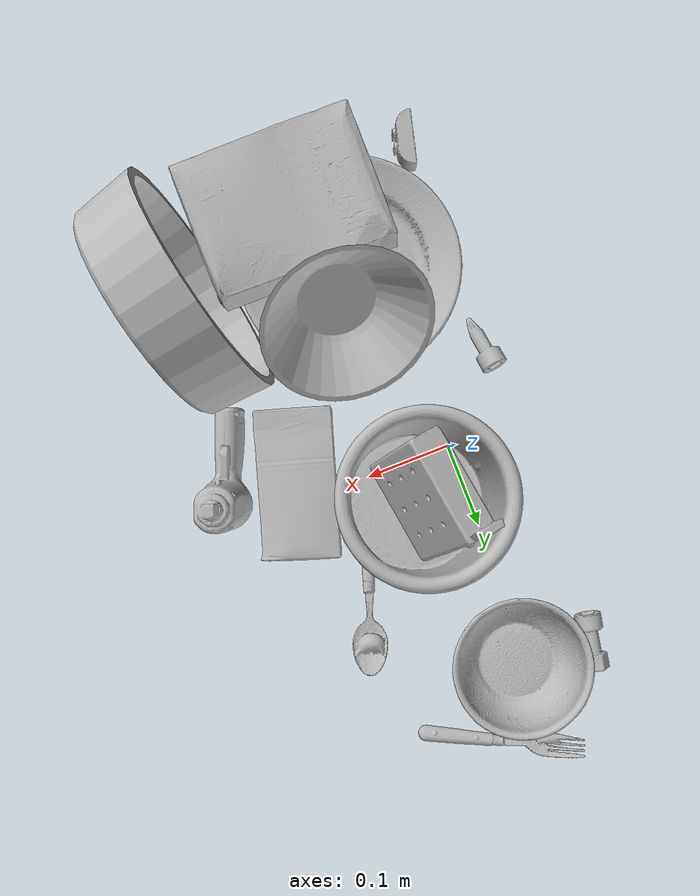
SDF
<sdf version="1.4">
  <world name="default">
    <light name="light1" type="point">
      <pose>0 0 1 0 0 0</pose>
      <diffuse>3 3 3 1</diffuse>
      <specular>3 3 3 1</specular>
    </light>
    <light name="light2" type="point">
      <pose>0 0.5 2 0 0 0</pose>
      <diffuse>1 1 1 1</diffuse>
      <specular>1 1 1 1</specular>
    </light>
    <light name="light3" type="point">
      <pose>0 0.5 2 0 0 0</pose>
      <diffuse>3 3 3 1</diffuse>
      <specular>3 3 3 1</specular>
    </light>
    <scene>
      <ambient>0.7 0.7 0.7</ambient>
    </scene>
    <model name="plate1">
      <link name="link_plate1">
        <collision name="default">
          <geometry>
            <mesh>
              <uri>model://plate/collision_meshes/collision.obj</uri>
              <scale>1.0 1.0 1.0</scale>
            </mesh>
          </geometry>
          <surface>
            <friction>
              <ode>
                <mu>0.5</mu>
                <mu2>0.5</mu2>
              </ode>
            </friction>
          <contact>
        <ode>
            <max_vel>0</max_vel>
            <min_depth>0.0001</min_depth>
            <kp>1e8</kp>
        </ode>
    </contact></surface>
        </collision>
        <visual name="default">
          <geometry>
            <mesh>
              <uri>model://plate/visual_meshes/visual.dae</uri>
              <scale>1.0 1.0 1.0</scale>
            </mesh>
          </geometry>
        </visual>
        <inertial>
          <mass>0.11001742631196976</mass>
          <pose>-0.0006044686888344586 0.000278257648460567 -0.0010561998933553696 0.00221878912528286 -0.0032254756485070152 0.4526088917028743</pose>
          <inertia>
            <ixx>0.00051466376</ixx>
            <iyy>0.0005097412</iyy>
            <izz>0.0010066056</izz>
            <ixy>0</ixy>
            <ixz>0</ixz>
            <iyz>0</iyz>
          </inertia>
        </inertial>
      </link>
      <pose>0.03130577132105827 -0.23690801858901978 0.014688513241708279 0.005058505987809246 -0.012124375989660135 1.295504745749021</pose>
    </model>
    <model name="plate2">
      <link name="link_plate2">
        <collision name="default">
          <geometry>
            <mesh>
              <uri>model://pan_tefal/collision_meshes/collision.obj</uri>
              <scale>1.0 1.0 1.0</scale>
            </mesh>
          </geometry>
          <surface>
            <friction>
              <ode>
                <mu>0.5</mu>
                <mu2>0.5</mu2>
              </ode>
            </friction>
          <contact>
        <ode>
            <max_vel>0</max_vel>
            <min_depth>0.0001</min_depth>
            <kp>1e8</kp>
        </ode>
    </contact></surface>
        </collision>
        <visual name="default">
          <geometry>
            <mesh>
              <uri>model://pan_tefal/visual_meshes/visual.dae</uri>
              <scale>1.0 1.0 1.0</scale>
            </mesh>
          </geometry>
        </visual>
        <inertial>
          <mass>1.457576870918274</mass>
          <pose>-0.00018002426077146083 3.279360316810198e-05 -0.008514936082065105 0.0008190306735146073 -0.00033013365411173643 -0.33185917339097665</pose>
          <inertia>
            <ixx>0.010061583</ixx>
            <iyy>0.01012645</iyy>
            <izz>0.01852144</izz>
            <ixy>0</ixy>
            <ixz>0</ixz>
            <iyz>0</iyz>
          </inertia>
        </inertial>
      </link>
      <pose>0.2211863249540329 -0.25406575202941895 0.1284227818250656 -1.3502767687867459 1.0573364377804813 1.9417198221155187</pose>
    </model>
    <model name="bowl1">
      <link name="link_bowl1">
        <collision name="default">
          <geometry>
            <mesh>
              <uri>model://bowl_a/collision_meshes/collision.obj</uri>
              <scale>1.0 1.0 1.0</scale>
            </mesh>
          </geometry>
          <surface>
            <friction>
              <ode>
                <mu>0.5</mu>
                <mu2>0.5</mu2>
              </ode>
            </friction>
          <contact>
        <ode>
            <max_vel>0</max_vel>
            <min_depth>0.0001</min_depth>
            <kp>1e8</kp>
        </ode>
    </contact></surface>
        </collision>
        <visual name="default">
          <geometry>
            <mesh>
              <uri>model://bowl_a/visual_meshes/visual.dae</uri>
              <scale>1.0 1.0 1.0</scale>
            </mesh>
          </geometry>
        </visual>
        <inertial>
          <mass>0.29746556282043457</mass>
          <pose>0.0002786756958812475 4.7311452362919226e-05 -0.0013765294570475817 -0.0009805438325310402 -0.001093816410149737 -0.19123071729823712</pose>
          <inertia>
            <ixx>0.0008468981</ixx>
            <iyy>0.00085209764</iyy>
            <izz>0.0015062407</izz>
            <ixy>0</ixy>
            <ixz>0</ixz>
            <iyz>0</iyz>
          </inertia>
        </inertial>
      </link>
      <pose>0.06167196109890938 -0.18095166981220245 0.08047521114349365 0.7036663475924306 0.22120396333735728 2.883596918948332</pose>
    </model>
    <model name="bowl2">
      <link name="link_bowl2">
        <collision name="default">
          <geometry>
            <mesh>
              <uri>model://bowl/collision_meshes/collision.obj</uri>
              <scale>1.0 1.0 1.0</scale>
            </mesh>
          </geometry>
          <surface>
            <friction>
              <ode>
                <mu>0.5</mu>
                <mu2>0.5</mu2>
              </ode>
            </friction>
          <contact>
        <ode>
            <max_vel>0</max_vel>
            <min_depth>0.0001</min_depth>
            <kp>1e8</kp>
        </ode>
    </contact></surface>
        </collision>
        <visual name="default">
          <geometry>
            <mesh>
              <uri>model://bowl/visual_meshes/visual.dae</uri>
              <scale>1.0 1.0 1.0</scale>
            </mesh>
          </geometry>
        </visual>
        <inertial>
          <mass>0.12348172068595886</mass>
          <pose>0.0002044529828708619 -0.0010302055161446333 -0.0008042656118050218 -0.01576411854188812 0.014546757923928972 0.7140383762832406</pose>
          <inertia>
            <ixx>0.0002836472</ixx>
            <iyy>0.00027730947</iyy>
            <izz>0.00047719217</izz>
            <ixy>0</ixy>
            <ixz>0</ixz>
            <iyz>0</iyz>
          </inertia>
        </inertial>
      </link>
      <pose>0.01728137768805027 0.2655485272407532 0.027779996395111084 -4.1907438380493467e-08 -4.5340024709005986e-09 1.3240054798107244</pose>
    </model>
    <model name="silverware1">
      <link name="link_silverware1">
        <collision name="default">
          <geometry>
            <mesh>
              <uri>model://spoon/collision_meshes/collision.obj</uri>
              <scale>1.0 1.0 1.0</scale>
            </mesh>
          </geometry>
          <surface>
            <friction>
              <ode>
                <mu>0.5</mu>
                <mu2>0.5</mu2>
              </ode>
            </friction>
          <contact>
        <ode>
            <max_vel>0</max_vel>
            <min_depth>0.0001</min_depth>
            <kp>1e8</kp>
        </ode>
    </contact></surface>
        </collision>
        <visual name="default">
          <geometry>
            <mesh>
              <uri>model://spoon/visual_meshes/visual.dae</uri>
              <scale>1.0 1.0 1.0</scale>
            </mesh>
          </geometry>
        </visual>
        <inertial>
          <mass>0.03284037858247757</mass>
          <pose>-0.005526319611817598 -0.001603417214937508 -0.000727165665011853 0.03521671059584429 -0.039065856285187314 0.0061506144474233635</pose>
          <inertia>
            <ixx>1.8266356e-06</ixx>
            <iyy>0.00012495652</iyy>
            <izz>0.00012585736</izz>
            <ixy>0</ixy>
            <ixz>0</ixz>
            <iyz>0</iyz>
          </inertia>
        </inertial>
      </link>
      <pose>0.14758315682411194 0.12518174946308136 0.009420786052942276 -0.022111557784984737 -0.0032538162321472147 1.2207633241451965</pose>
    </model>
    <model name="box1">
      <link name="link_box1">
        <collision name="default">
          <geometry>
            <mesh>
              <uri>model://cracker_box/collision_meshes/collision.obj</uri>
              <scale>1.0 1.0 1.0</scale>
            </mesh>
          </geometry>
          <surface>
            <friction>
              <ode>
                <mu>0.5</mu>
                <mu2>0.5</mu2>
              </ode>
            </friction>
          <contact>
        <ode>
            <max_vel>0</max_vel>
            <min_depth>0.0001</min_depth>
            <kp>1e8</kp>
        </ode>
    </contact></surface>
        </collision>
        <visual name="default">
          <geometry>
            <mesh>
              <uri>model://cracker_box/visual_meshes/visual.dae</uri>
              <scale>1.0 1.0 1.0</scale>
            </mesh>
          </geometry>
        </visual>
        <inertial>
          <mass>2.434305191040039</mass>
          <pose>0.0009464126778766513 0.0002543424488976598 -0.0017029534792527556 -0.0003162073658586955 -0.011106488669321329 0.0025467952332158075</pose>
          <inertia>
            <ixx>0.0061917845</ixx>
            <iyy>0.010223853</iyy>
            <izz>0.014590379</izz>
            <ixy>0</ixy>
            <ixz>0</ixz>
            <iyz>0</iyz>
          </inertia>
        </inertial>
      </link>
      <pose>0.0768856480717659 -0.3182063698768616 0.0614294670522213 0.012974874027044983 0.0028113687641930646 -0.008681219027060365</pose>
    </model>
    <model name="box2">
      <link name="link_box2">
        <collision name="default">
          <geometry>
            <mesh>
              <uri>model://sugar_box/collision_meshes/collision.obj</uri>
              <scale>1.0 1.0 1.0</scale>
            </mesh>
          </geometry>
          <surface>
            <friction>
              <ode>
                <mu>0.5</mu>
                <mu2>0.5</mu2>
              </ode>
            </friction>
          <contact>
        <ode>
            <max_vel>0</max_vel>
            <min_depth>0.0001</min_depth>
            <kp>1e8</kp>
        </ode>
    </contact></surface>
        </collision>
        <visual name="default">
          <geometry>
            <mesh>
              <uri>model://sugar_box/visual_meshes/visual.dae</uri>
              <scale>1.0 1.0 1.0</scale>
            </mesh>
          </geometry>
        </visual>
        <inertial>
          <mass>0.5700510144233704</mass>
          <pose>0.0010343727190047503 3.849109634757042e-05 -0.00036364805418998003 -0.00040462615490547663 0.0010506634056045778 0.0026153790218534064</pose>
          <inertia>
            <ixx>0.00047496508</ixx>
            <iyy>0.0015351841</iyy>
            <izz>0.0018377992</izz>
            <ixy>0</ixy>
            <ixz>0</ixz>
            <iyz>0</iyz>
          </inertia>
        </inertial>
      </link>
      <pose>0.1803962141275406 -0.023503990843892097 0.022362396121025085 3.141270696771289 -0.02510845674537718 1.269339943279457</pose>
    </model>
    <model name="cup1">
      <link name="link_cup1">
        <collision name="default">
          <geometry>
            <mesh>
              <uri>model://i_cups/collision_meshes/collision.obj</uri>
              <scale>2.0 2.0 2.0</scale>
            </mesh>
          </geometry>
          <surface>
            <friction>
              <ode>
                <mu>0.5</mu>
                <mu2>0.5</mu2>
              </ode>
            </friction>
          <contact>
        <ode>
            <max_vel>0</max_vel>
            <min_depth>0.0001</min_depth>
            <kp>1e8</kp>
        </ode>
    </contact></surface>
        </collision>
        <visual name="default">
          <geometry>
            <mesh>
              <uri>model://i_cups/visual_meshes/visual.dae</uri>
              <scale>2.0 2.0 2.0</scale>
            </mesh>
          </geometry>
        </visual>
        <inertial>
          <mass>0.8749163746833801</mass>
          <pose>0.0002248019736725837 0.0003359491820447147 -0.0017158064292743802 -0.028982988446176382 -0.03987323668700188 -0.3459135059395342</pose>
          <inertia>
            <ixx>0.0048453393</ixx>
            <iyy>0.0048880302</iyy>
            <izz>0.0054154512</izz>
            <ixy>0</ixy>
            <ixz>0</ixz>
            <iyz>0</iyz>
          </inertia>
        </inertial>
      </link>
      <pose>0.05669105425477028 0.04354419931769371 0.08158477395772934 -0.08155724272662827 -0.04495176786150802 1.5670682882601616</pose>
    </model>
    <model name="silverware2">
      <link name="link_silverware2">
        <collision name="default">
          <geometry>
            <mesh>
              <uri>model://fork/collision_meshes/collision.obj</uri>
              <scale>1.0 1.0 1.0</scale>
            </mesh>
          </geometry>
          <surface>
            <friction>
              <ode>
                <mu>0.5</mu>
                <mu2>0.5</mu2>
              </ode>
            </friction>
          <contact>
        <ode>
            <max_vel>0</max_vel>
            <min_depth>0.0001</min_depth>
            <kp>1e8</kp>
        </ode>
    </contact></surface>
        </collision>
        <visual name="default">
          <geometry>
            <mesh>
              <uri>model://fork/visual_meshes/visual.dae</uri>
              <scale>1.0 1.0 1.0</scale>
            </mesh>
          </geometry>
        </visual>
        <inertial>
          <mass>0.021080315113067627</mass>
          <pose>-0.02957003377377987 0.00046588227269239724 0.0003218860656488687 -0.013550583544297463 -0.010977830979267335 0.014453899239778455</pose>
          <inertia>
            <ixx>7.3898417e-07</ixx>
            <iyy>5.503463e-05</iyy>
            <izz>5.5365177e-05</izz>
            <ixy>0</ixy>
            <ixz>0</ixz>
            <iyz>0</iyz>
          </inertia>
        </inertial>
      </link>
      <pose>0.06857114285230637 0.3460865914821625 0.005683861207216978 -0.17512556857664807 0.02591299309717815 2.6599017370013875</pose>
    </model>
    <model name="silverware3">
      <link name="link_silverware3">
        <collision name="default">
          <geometry>
            <mesh>
              <uri>model://knife/collision_meshes/collision.obj</uri>
              <scale>1.0 1.0 1.0</scale>
            </mesh>
          </geometry>
          <surface>
            <friction>
              <ode>
                <mu>0.5</mu>
                <mu2>0.5</mu2>
              </ode>
            </friction>
          <contact>
        <ode>
            <max_vel>0</max_vel>
            <min_depth>0.0001</min_depth>
            <kp>1e8</kp>
        </ode>
    </contact></surface>
        </collision>
        <visual name="default">
          <geometry>
            <mesh>
              <uri>model://knife/visual_meshes/visual.dae</uri>
              <scale>1.0 1.0 1.0</scale>
            </mesh>
          </geometry>
        </visual>
        <inertial>
          <mass>0.03557601198554039</mass>
          <pose>-0.023785259574651718 0.0015275123296305537 5.062016498413868e-05 0.07305791577183936 0.01724842049726123 -0.007409813921982597</pose>
          <inertia>
            <ixx>1.0097915e-06</ixx>
            <iyy>0.00013667726</iyy>
            <izz>0.00013700248</izz>
            <ixy>0</ixy>
            <ixz>0</ixz>
            <iyz>0</iyz>
          </inertia>
        </inertial>
      </link>
      <pose>0.27645593881607056 -0.2792123556137085 0.008136807009577751 -0.2817495992423171 -0.008871627421719881 1.6466180765309246</pose>
    </model>
    <model name="toy1">
      <link name="link_toy1">
        <collision name="default">
          <geometry>
            <mesh>
              <uri>model://b_toy_airplane/collision_meshes/collision.obj</uri>
              <scale>1.0 1.0 1.0</scale>
            </mesh>
          </geometry>
          <surface>
            <friction>
              <ode>
                <mu>0.5</mu>
                <mu2>0.5</mu2>
              </ode>
            </friction>
          <contact>
        <ode>
            <max_vel>0</max_vel>
            <min_depth>0.0001</min_depth>
            <kp>1e8</kp>
        </ode>
    </contact></surface>
        </collision>
        <visual name="default">
          <geometry>
            <mesh>
              <uri>model://b_toy_airplane/visual_meshes/visual.dae</uri>
              <scale>1.0 1.0 1.0</scale>
            </mesh>
          </geometry>
        </visual>
        <inertial>
          <mass>0.2131570726633072</mass>
          <pose>0.005081363953649998 0.00401558680459857 0.00954306498169899 -0.040018114912876775 -0.04022188568687408 -0.5601502887595425</pose>
          <inertia>
            <ixx>0.00039573</ixx>
            <iyy>0.00015817716</iyy>
            <izz>0.00049232744</izz>
            <ixy>0</ixy>
            <ixz>0</ixz>
            <iyz>0</iyz>
          </inertia>
        </inertial>
      </link>
      <pose>0.264402836561203 -0.057824648916721344 0.0422339104115963 0.0403281092892846 -1.490635718485571 -0.3754663594256719</pose>
    </model>
    <model name="toy2">
      <link name="link_toy2">
        <collision name="default">
          <geometry>
            <mesh>
              <uri>model://nine_hole_peg_test/collision_meshes/collision.obj</uri>
              <scale>1.0 1.0 1.0</scale>
            </mesh>
          </geometry>
          <surface>
            <friction>
              <ode>
                <mu>0.5</mu>
                <mu2>0.5</mu2>
              </ode>
            </friction>
          <contact>
        <ode>
            <max_vel>0</max_vel>
            <min_depth>0.0001</min_depth>
            <kp>1e8</kp>
        </ode>
    </contact></surface>
        </collision>
        <visual name="default">
          <geometry>
            <mesh>
              <uri>model://nine_hole_peg_test/visual_meshes/visual.dae</uri>
              <scale>1.0 1.0 1.0</scale>
            </mesh>
          </geometry>
        </visual>
        <inertial>
          <mass>0.9403080940246582</mass>
          <pose>-0.004617387894541025 -0.009647617116570473 2.646069333422929e-05 -0.0014666798116952742 0.0007194174694617774 -0.6342424398534297</pose>
          <inertia>
            <ixx>0.0014703267</ixx>
            <iyy>0.0013728285</iyy>
            <izz>0.0025764457</izz>
            <ixy>0</ixy>
            <ixz>0</ixz>
            <iyz>0</iyz>
          </inertia>
        </inertial>
      </link>
      <pose>0.04079865664243698 0.04656483978033066 0.09824162721633911 1.1585582762577464 -0.04140049982815355 1.716792865738949</pose>
    </model>
    <model name="toy3">
      <link name="link_toy3">
        <collision name="default">
          <geometry>
            <mesh>
              <uri>model://a_lego_duplo/collision_meshes/collision.obj</uri>
              <scale>1.0 1.0 1.0</scale>
            </mesh>
          </geometry>
          <surface>
            <friction>
              <ode>
                <mu>0.5</mu>
                <mu2>0.5</mu2>
              </ode>
            </friction>
          <contact>
        <ode>
            <max_vel>0</max_vel>
            <min_depth>0.0001</min_depth>
            <kp>1e8</kp>
        </ode>
    </contact></surface>
        </collision>
        <visual name="default">
          <geometry>
            <mesh>
              <uri>model://a_lego_duplo/visual_meshes/visual.dae</uri>
              <scale>1.0 1.0 1.0</scale>
            </mesh>
          </geometry>
        </visual>
        <inertial>
          <mass>0.023130550980567932</mass>
          <pose>-0.00011337705655023456 0.00018517566786613315 0.00036926098982803524 -0.014116995996849858 -0.00012565876120078728 6.143831699070756e-05</pose>
          <inertia>
            <ixx>2.9655212e-06</ixx>
            <iyy>6.643419e-06</iyy>
            <izz>8.229349e-06</izz>
            <ixy>0</ixy>
            <ixz>0</ixz>
            <iyz>0</iyz>
          </inertia>
        </inertial>
      </link>
      <pose>-0.0805826336145401 -0.3512548804283142 0.016109010204672813 1.5707952460323908 6.226920147818237e-07 1.3180846439214424</pose>
    </model>
    <model name="toy4">
      <link name="link_toy4">
        <collision name="default">
          <geometry>
            <mesh>
              <uri>model://c_toy_airplane/collision_meshes/collision.obj</uri>
              <scale>1.0 1.0 1.0</scale>
            </mesh>
          </geometry>
          <surface>
            <friction>
              <ode>
                <mu>0.5</mu>
                <mu2>0.5</mu2>
              </ode>
            </friction>
          <contact>
        <ode>
            <max_vel>0</max_vel>
            <min_depth>0.0001</min_depth>
            <kp>1e8</kp>
        </ode>
    </contact></surface>
        </collision>
        <visual name="default">
          <geometry>
            <mesh>
              <uri>model://c_toy_airplane/visual_meshes/visual.dae</uri>
              <scale>1.0 1.0 1.0</scale>
            </mesh>
          </geometry>
        </visual>
        <inertial>
          <mass>0.016945533454418182</mass>
          <pose>-0.00023024251277092844 -4.426267139479023e-07 -0.006080526392906904 -0.00619248279943298 -0.01679780513617648 0.7654772671109313</pose>
          <inertia>
            <ixx>7.781044e-06</ixx>
            <iyy>7.759084e-06</iyy>
            <izz>1.826835e-06</izz>
            <ixy>0</ixy>
            <ixz>0</ixz>
            <iyz>0</iyz>
          </inertia>
        </inertial>
      </link>
      <pose>-0.07275048643350601 0.27385348081588745 0.014761261641979218 1.6052426896275311 0.6120347262863901 2.983491489337747</pose>
    </model>
    <model name="toy5">
      <link name="link_toy5">
        <collision name="default">
          <geometry>
            <mesh>
              <uri>model://d_toy_airplane/collision_meshes/collision.obj</uri>
              <scale>1.0 1.0 1.0</scale>
            </mesh>
          </geometry>
          <surface>
            <friction>
              <ode>
                <mu>0.5</mu>
                <mu2>0.5</mu2>
              </ode>
            </friction>
          <contact>
        <ode>
            <max_vel>0</max_vel>
            <min_depth>0.0001</min_depth>
            <kp>1e8</kp>
        </ode>
    </contact></surface>
        </collision>
        <visual name="default">
          <geometry>
            <mesh>
              <uri>model://d_toy_airplane/visual_meshes/visual.dae</uri>
              <scale>1.0 1.0 1.0</scale>
            </mesh>
          </geometry>
        </visual>
        <inertial>
          <mass>0.01782749593257904</mass>
          <pose>9.410309576196596e-05 -5.809334834339097e-05 -0.011728094890713692 0.00026697885790152897 0.00467897817044427 0.5194648744438854</pose>
          <inertia>
            <ixx>5.3443378e-06</ixx>
            <iyy>5.3483677e-06</iyy>
            <izz>1.6134899e-06</izz>
            <ixy>0</ixy>
            <ixz>0</ixz>
            <iyz>0</iyz>
          </inertia>
        </inertial>
      </link>
      <pose>-0.08052165806293488 -0.09902272373437881 0.011361271142959595 -2.3017923749810625 1.247619095651424 2.5458679573899783</pose>
    </model>
  <physics type="ode">
      <max_contacts>50</max_contacts>
      <ode>
        <solver>
          <type>quick</type>
          <iters>75</iters>
        </solver>
        <constraints>
          <contact_max_correcting_vel>0</contact_max_correcting_vel>
          <contact_surface_layer>0</contact_surface_layer>
        </constraints>
      </ode>
    </physics></world>
</sdf>
